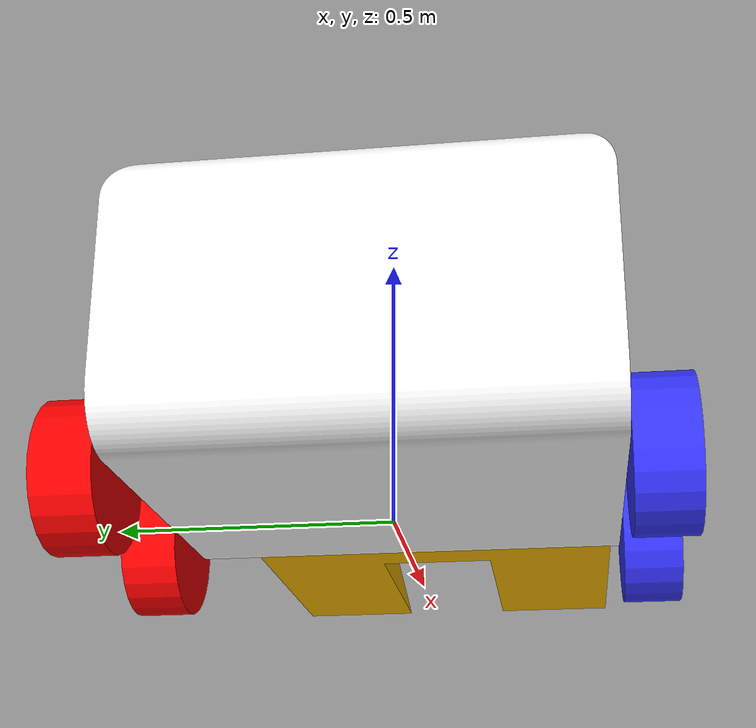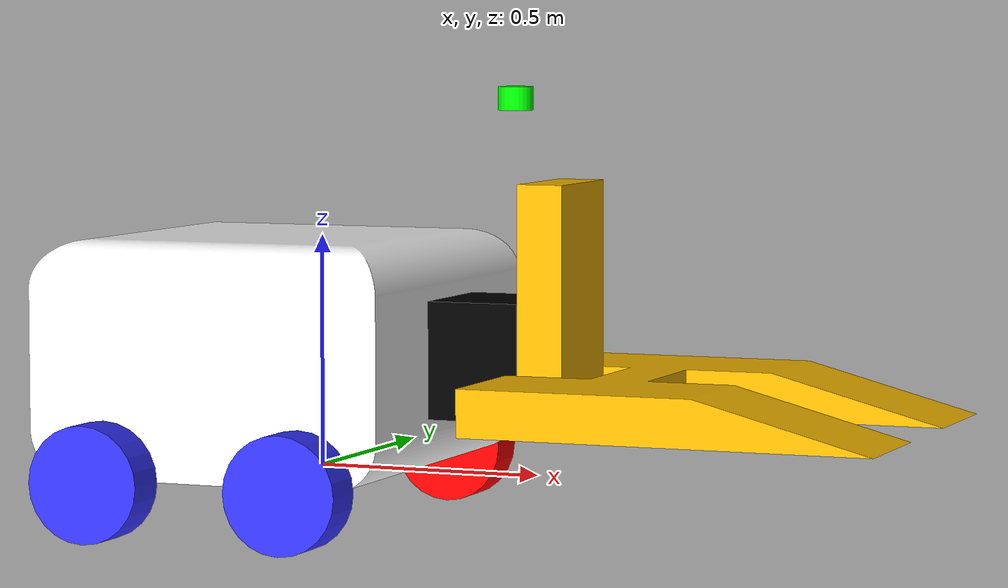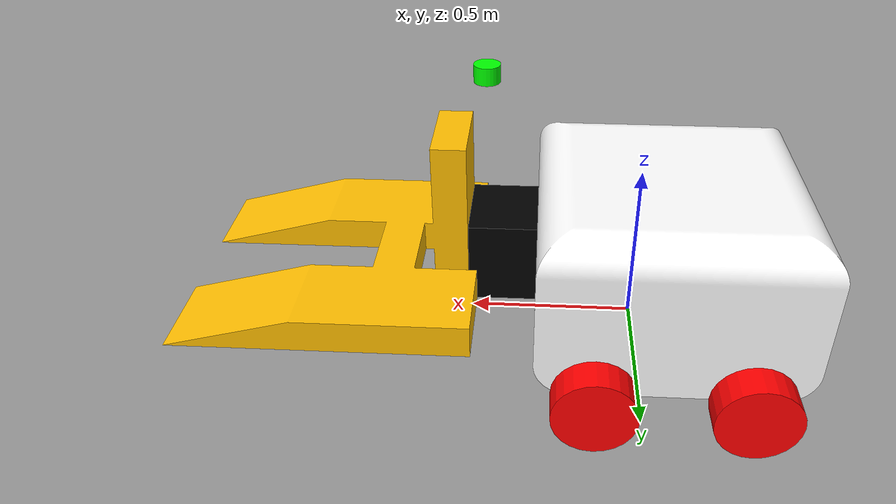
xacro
<?xml version="1.0"?>
<robot xmlns:xacro="http://www.ros.org/wiki/xacro"  name="robot">

    <xacro:include filename="robot_core.urdf.xacro" />
    <xacro:include filename="inertial_macros.xacro" />
    <xacro:include filename="lidar.xacro" />
    <xacro:include filename="drive.urdf.xacro" />
    <xacro:drive_controller/>
    <xacro:include filename="slider_tr.xacro" />
    <xacro:include filename="lifter_tr.xacro" />

    <!-- DECRIPTION OF ARM MECHANISM PROPERTIES -->
    <ros2_control name="gripper_robot_gazebo_system" type="system">
        <hardware>
            <plugin>gazebo_ros2_control/GazeboSystem</plugin>
        </hardware>
        <xacro:slider_tr/>
        <xacro:lifter_tr/>
    </ros2_control>
    <xacro:robot_controller/>

</robot>

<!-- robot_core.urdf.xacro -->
<robot xmlns:xacro="http://www.ros.org/wiki/xacro" >

    <xacro:include filename="inertial_macros.xacro" />

    <material name="white">
        <color rgba="1 1 1 1" />
    </material>

    <material name="orange">
        <color rgba="1 0.3 0.1 1"/>
    </material>

    <material name="blue">
        <color rgba="0.2 0.2 1 1"/>
    </material>

    <material name="black">
        <color rgba="0 0 0 1"/>
    </material>

    <material name="red">
        <color rgba="1 0 0 1"/>
    </material>

    <material name="green">
        <color rgba="0 1 0 1"/>
    </material>

    <material name="yellow">
        <color rgba="255 190 0 0.8"/>
    </material>

    <!-- BASE LINK -->
    <link name="base_link"></link>
    <link name="chassis">
         <visual>
             <origin xyz="0 0 0" rpy="0 0 0"/>
             <geometry>
                 <mesh filename = "file://$(find articubot_one)/description/DaeFile/Body.dae" scale = "1 1 1"/>
             </geometry>
             <material name="white"/>
         </visual>
         <collision>
             <origin xyz="0 0 0" rpy="0 0 0"/>
             <geometry>
                 <mesh filename = "file://$(find articubot_one)/description/DaeFile/Body.dae" scale = "1 1 1"/>
             </geometry>
         </collision>
         <xacro:inertial_box mass="100" x="0.8" y="0.8" z="0.5">
             <origin xyz="0 0 0.25" rpy="0 0 0"/>
         </xacro:inertial_box>
    </link>
    <gazebo reference="chassis">
         <material>Gazebo/White</material>
    </gazebo>

    <!-- BASE_FOOTPRINT LINK -->
    <joint name="base_footprint_joint" type="fixed">
         <parent link="base_link"/>
         <child link="base_footprint"/>
         <origin xyz="0 0 0" rpy="0 0 0"/>
         <dynamics damping="1" friction="500"/>
    </joint>
    <link name="base_footprint"></link>
    <joint name="chassis_joint" type="fixed">
         <parent link="base_link"/>
         <child link="chassis"/>
         <origin xyz="-0.1 0 0"/>
    </joint>

    <!--WHEEL DESCRIPTION-->
    <!--Front Wheel-->
    <joint name="right_front_wheel_joint" type="continuous">
        <parent link="base_link"/>
        <child link="right_front_wheel"/>
        <origin xyz="0.125 0.45 0" rpy="-${pi/2} 0 0"/>
        <axis xyz="0 0 1"/>
        <dynamics damping="1" friction="10"/>
    </joint>

    <link name="right_front_wheel">
        <visual>
            <geometry>
                <cylinder length="0.1" radius="0.125" />
            </geometry>
            <material name="red"/>
        </visual>
        <collision>
            <geometry>
                <cylinder length="0.1" radius="0.125" />
            </geometry>
        </collision>
        <xacro:inertial_cylinder mass="1" length="0.1" radius="0.125">
            <origin xyz="0 0 0" rpy="0 0 0"/>
        </xacro:inertial_cylinder>
    </link>
    <gazebo reference="right_front_wheel">
        <material>Gazebo/Red</material>
    </gazebo>

    <joint name="left_front_wheel_joint" type="continuous">
        <parent link="base_link"/>
        <child link="left_front_wheel"/>
        <origin xyz="0.125 -0.45 0" rpy="${pi/2} 0 0"/>
        <axis xyz="0 0 1"/>
        <dynamics damping="1" friction="10"/>
    </joint>

    <link name="left_front_wheel">
        <visual>
            <geometry>
                <cylinder length="0.1" radius="0.125" />
            </geometry>
            <material name="blue"/>
        </visual>
        <collision>
            <geometry>
                <cylinder length="0.1" radius="0.125" />
            </geometry>
        </collision>
        <xacro:inertial_cylinder mass="1" length="0.1" radius="0.125">
            <origin xyz="0 0 0" rpy="0 0 0"/>
        </xacro:inertial_cylinder>
    </link>
    <gazebo reference="left_front_wheel">
        <material>Gazebo/Blue</material>
    </gazebo>

    <!--Back Wheel-->
    <joint name="right_back_wheel_joint" type="continuous">
        <parent link="base_link"/>
        <child link="right_back_wheel"/>
        <origin xyz="-0.325 0.45 0" rpy="-${pi/2} 0 0"/>
        <axis xyz="0 0 1"/>
        <dynamics damping="1" friction="10"/>
    </joint>

    <link name="right_back_wheel">
        <visual>
            <geometry>
                <cylinder length="0.1" radius="0.125" />
            </geometry>
            <material name="red"/>
        </visual>
        <collision>
            <geometry>
                <cylinder length="0.1" radius="0.125" />
            </geometry>
        </collision>
        <xacro:inertial_cylinder mass="1" length="0.1" radius="0.125">
            <origin xyz="0 0 0" rpy="0 0 0"/>
        </xacro:inertial_cylinder>
    </link>
    <gazebo reference="right_back_wheel">
        <material>Gazebo/Red</material>
    </gazebo>

    <joint name="left_back_wheel_joint" type="continuous">
        <parent link="base_link"/>
        <child link="left_back_wheel"/>
        <origin xyz="-0.325 -0.45 0" rpy="${pi/2} 0 0"/>
        <axis xyz="0 0 1"/>
        <dynamics damping="1" friction="10"/>
    </joint>

    <link name="left_back_wheel">
        <visual>
            <geometry>
                <cylinder length="0.1" radius="0.125" />
            </geometry>
            <material name="blue"/>
        </visual>
        <collision>
            <geometry>
                <cylinder length="0.1" radius="0.125" />
            </geometry>
        </collision>
        <xacro:inertial_cylinder mass="1" length="0.1" radius="0.125">
            <origin xyz="0 0 0" rpy="0 0 0"/>
        </xacro:inertial_cylinder>
    </link>
    <gazebo reference="left_back_wheel">
        <material>Gazebo/Blue</material>
    </gazebo>

    <!--ARM SLIDER PREFERENCE-->
    <joint name="arm_slider_joint" type="prismatic">
        <parent link="base_link"/>
        <child link="arm_slider"/>
        <origin xyz="0.2 0 0.25" rpy="0 0 0"/>
        <axis xyz="1 0 0"/>
        <limit lower="-0.155" upper="0.07" effort="0.00005" velocity="1"/>
        <dynamics damping="1" friction="50"/>
    </joint>

    <link name="arm_slider">
        <visual>
            <geometry>
                <mesh filename = "file://$(find articubot_one)/description/DaeFile/Arm.dae" scale = "1 1 1"/>
            </geometry>
            <material name="black"/>
        </visual>
        <collision>
            <geometry>
                <mesh filename = "file://$(find articubot_one)/description/DaeFile/Arm.dae" scale = "1 1 1"/>
            </geometry>
        </collision>
        <xacro:inertial_box mass="0.5" x="0.3" y="0.25" z="0.25">
             <origin xyz="0.15 0 0" rpy="0 0 0"/>
        </xacro:inertial_box>
    </link>
    <gazebo reference="arm_slider">
        <material>Gazebo/Black</material>
    </gazebo>

    <!--Lifter DESCRIPTION-->
    <joint name="lifter_joint" type="prismatic">
        <parent link="arm_slider"/>
        <child link="lifter"/>
        <origin xyz="0.3 0 0.125" rpy="0 0 0"/>
        <axis xyz="0 0 1"/>
        <limit lower="-0.23" upper="0.145" effort="1" velocity="1"/>
        <dynamics damping="1" friction="150" />
    </joint>

    <link name="lifter">
        <visual>
            <geometry>
                <mesh filename = "file://$(find articubot_one)/description/DaeFile/Lifter.dae" scale = "1 1 1"/>
            </geometry>
            <material name="yellow"/>
        </visual>
        <collision>
            <geometry>
                <mesh filename = "file://$(find articubot_one)/description/DaeFile/Lifter.dae" scale = "1 1 1"/>
            </geometry>
        </collision>
        <xacro:inertial_box mass="0.5" x="0.875" y="0.8" z="0.5">
             <origin xyz="0.415 0 0" rpy="0 0 0"/>
        </xacro:inertial_box>
    </link>
    <gazebo reference="lifter">
        <material>Gazebo/Yellow</material>
    </gazebo>
</robot>

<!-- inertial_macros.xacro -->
<robot xmlns:xacro="http://www.ros.org/wiki/xacro" >

    <!-- Specify some standard inertial
    calculations https://en.wikipedia.org/wiki/List_of_moments_of_inertia -->
    <!-- These make use of xacro's mathematical functionality -->

    <!-- Define Sphere-->
    <xacro:macro name="inertial_sphere" params="mass radius *origin">
        <inertial>
            <xacro:insert_block name="origin"/>
            <mass value="${mass}" />
            <inertia ixx="${(2/5) * mass * (radius*radius)}" ixy="0.0" ixz="0.0"
                    iyy="${(2/5) * mass * (radius*radius)}" iyz="0.0"
                    izz="${(2/5) * mass * (radius*radius)}" />
        </inertial>
    </xacro:macro>

    <!-- Define Box -->
    <xacro:macro name="inertial_box" params="mass x y z *origin">
        <inertial>
            <xacro:insert_block name="origin"/>
            <mass value="${mass}" />
            <inertia ixx="${(1/12) * mass * (y*y+z*z)}" ixy="0.0" ixz="0.0"
                    iyy="${(1/12) * mass * (x*x+z*z)}" iyz="0.0"
                    izz="${(1/12) * mass * (x*x+y*y)}" />
        </inertial>
    </xacro:macro>

    <!-- Define Cylinder -->
    <xacro:macro name="inertial_cylinder" params="mass length radius *origin">
        <inertial>
            <xacro:insert_block name="origin"/>
            <mass value="${mass}" />
            <inertia ixx="${(1/12) * mass * (3*radius*radius + length*length)}" ixy="0.0" ixz="0.0"
                    iyy="${(1/12) * mass * (3*radius*radius + length*length)}" iyz="0.0"
                    izz="${(1/2) * mass * (radius*radius)}" />
        </inertial>
    </xacro:macro>

</robot>

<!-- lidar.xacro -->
<robot xmlns:xacro="http://www.ros.org/wiki/xacro" >

    <joint name="laser_joint" type="fixed">
        <parent link="base_link"/>
        <child link="laser_frame"/>
        <origin xyz="0.45 0 0.8" rpy="0 0 0"/>
    </joint>

    <link name="laser_frame">
        <visual>
            <geometry>
                <cylinder radius="0.0375" length="0.05"/>
            </geometry>
            <material name="green"/>
        </visual>
        <collision>
            <geometry>
                <cylinder radius="0.0375" length="0.05"/>
            </geometry>
        </collision>
        <xacro:inertial_cylinder mass="0.1" length="0.05" radius="0.0375">
            <origin xyz="0 0 0" rpy="0 0 0"/>
        </xacro:inertial_cylinder>
    </link>

    <gazebo reference="laser_frame">
        <material>Gazebo/Green</material>

        <sensor name="laser" type="ray">
            <pose> 0 0 0 0 0 0 </pose>
            <visualize>true</visualize>
            <update_rate>10</update_rate>
            <ray>
                <scan>
                    <horizontal>
                        <samples>360</samples>
                        <min_angle>-3.14</min_angle>
                        <max_angle>3.14</max_angle>
                    </horizontal>
                </scan>
                <range>
                    <min>0.15</min>
                    <max>12</max>
                </range>
            </ray>

            <plugin name="laser_controller" filename="libgazebo_ros_ray_sensor.so">
                <ros>
                    <argument>~/out:=scan</argument>
                </ros>
                <output_type>sensor_msgs/LaserScan</output_type>
                <frame_name>laser_frame</frame_name>
            </plugin>
        </sensor>
    </gazebo>

</robot>
